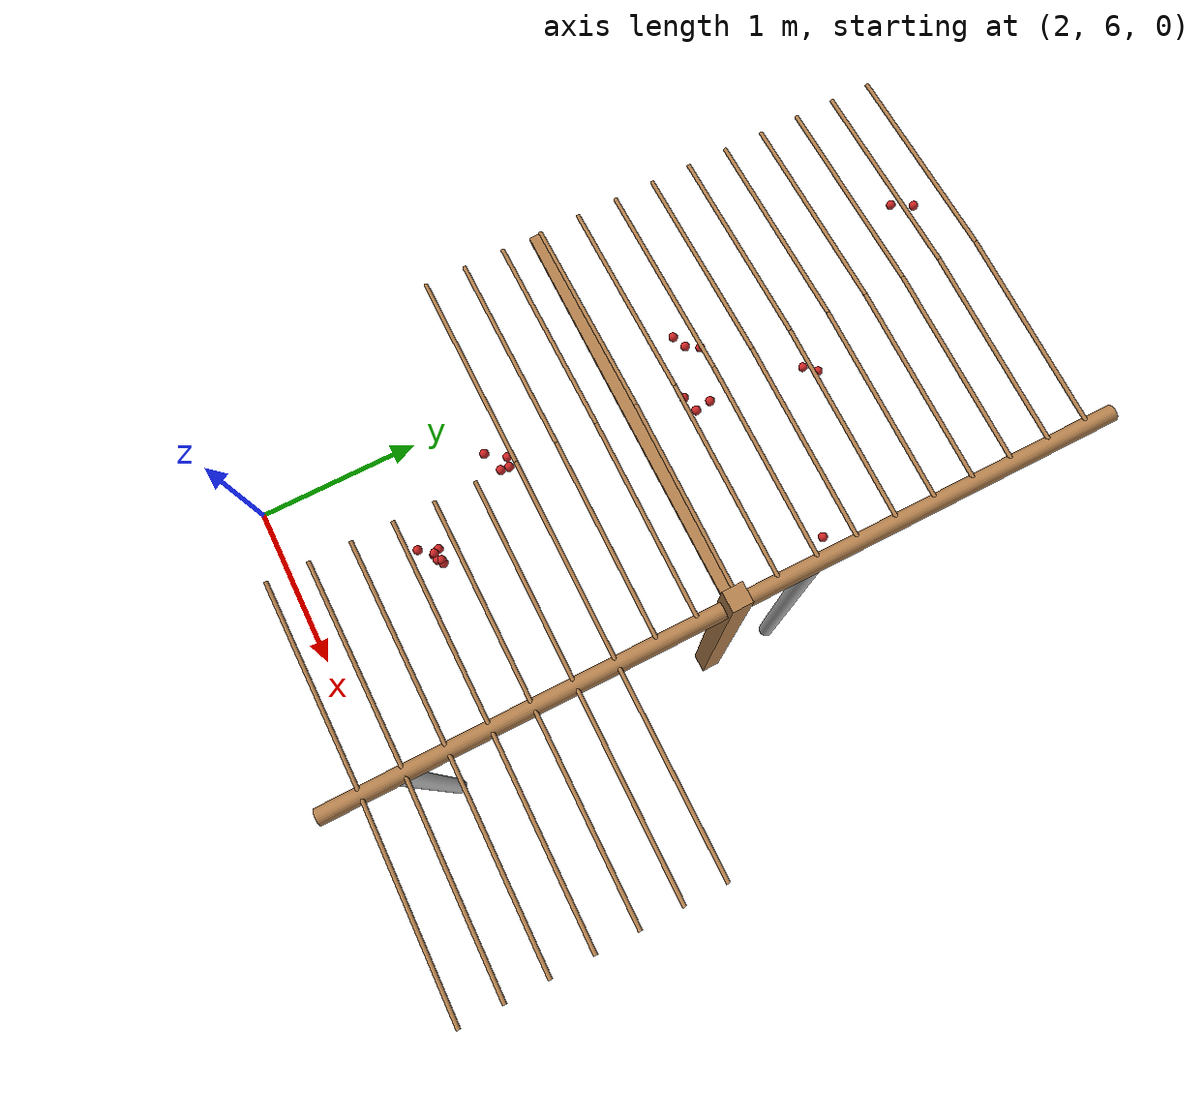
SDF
<sdf version="1.4">
 <model name="pergola">
  <include><name>post_26</name><pose>4.0 8.0 0 0 0 0</pose><uri>model://post</uri></include>
  <link name="beam_15">
   <pose>3.0 8.0 1.81 0 0 0</pose>
   <collision name="collision"><geometry><box><size>2.0 0.06 0.02</size></box></geometry></collision>
   <visual name="visual">
    <geometry><box><size>2.0 0.06 0.02</size></box></geometry>
    <material><script><name>Gazebo/Wood</name></script></material>
   </visual>
   <inertial>
    <mass>5</mass>
    <inertia>
     <ixx>0.0016666666666666668</ixx>
     <ixy>0.0</ixy>
     <ixz>0.0</ixz>
     <iyy>1.6681666666666664</iyy>
     <iyz>0.0</iyz>
     <izz>1.6668333333333332</izz>
    </inertia>
   </inertial>
  </link>
  <include><name>tree_23</name><pose>4.0 6.4 0 0 0 0</pose><uri>model://tree_trunk</uri></include>
  <include><name>tree_24</name><pose>4.0 8.4 0 0 0 0</pose><uri>model://tree_trunk</uri></include>
  <link name="baseBranch_23">
   <pose>4.0 7.0 1.8 1.5707963267948966 0 0</pose>
   <collision name="collision">
    <geometry><cylinder><radius>0.04</radius><length>1.94</length></cylinder></geometry>
   </collision>
   <visual name="visual">
    <geometry><cylinder><radius>0.04</radius><length>1.94</length></cylinder></geometry>
    <material><script><name>Gazebo/WoodFloor</name></script></material>
   </visual>
   <inertial>
    <mass>10</mass>
    <inertia>
     <ixx>3.140333333333333</ixx>
     <ixy>0.0</ixy>
     <ixz>0.0</ixz>
     <iyy>3.140333333333333</iyy>
     <iyz>0.0</iyz>
     <izz>0.008</izz>
    </inertia>
   </inertial>
  </link>
  <link name="baseBranch_24">
   <pose>4.0 9.0 1.8 1.5707963267948966 0 0</pose>
   <collision name="collision">
    <geometry><cylinder><radius>0.04</radius><length>1.94</length></cylinder></geometry>
   </collision>
   <visual name="visual">
    <geometry><cylinder><radius>0.04</radius><length>1.94</length></cylinder></geometry>
    <material><script><name>Gazebo/WoodFloor</name></script></material>
   </visual>
   <inertial>
    <mass>10</mass>
    <inertia>
     <ixx>3.140333333333333</ixx>
     <ixy>0.0</ixy>
     <ixz>0.0</ixz>
     <iyy>3.140333333333333</iyy>
     <iyz>0.0</iyz>
     <izz>0.008</izz>
    </inertia>
   </inertial>
  </link>
  <link name="vine_263">
   <pose>3.5 6.23 1.85 0 -1.5208379310729538 0</pose>
   <collision name="collision">
    <geometry><cylinder><radius>0.01</radius><length>1.0012492197250393</length></cylinder></geometry>
   </collision>
   <visual name="visual">
    <geometry><cylinder><radius>0.01</radius><length>1.0012492197250393</length></cylinder></geometry>
    <material><script><name>Gazebo/WoodFloor</name></script></material>
   </visual>
   <inertial>
    <mass>5</mass>
    <inertia>
     <ixx>0.41783333333333345</ixx>
     <ixy>0.0</ixy>
     <ixz>0.0</ixz>
     <iyy>0.41783333333333345</iyy>
     <iyz>0.0</iyz>
     <izz>0.00025</izz>
    </inertia>
   </inertial>
  </link>
  <link name="vine_265">
   <pose>3.5 6.430000000000001 1.85 0 -1.5208379310729538 0</pose>
   <collision name="collision">
    <geometry><cylinder><radius>0.01</radius><length>1.0012492197250393</length></cylinder></geometry>
   </collision>
   <visual name="visual">
    <geometry><cylinder><radius>0.01</radius><length>1.0012492197250393</length></cylinder></geometry>
    <material><script><name>Gazebo/WoodFloor</name></script></material>
   </visual>
   <inertial>
    <mass>5</mass>
    <inertia>
     <ixx>0.41783333333333345</ixx>
     <ixy>0.0</ixy>
     <ixz>0.0</ixz>
     <iyy>0.41783333333333345</iyy>
     <iyz>0.0</iyz>
     <izz>0.00025</izz>
    </inertia>
   </inertial>
  </link>
  <link name="vine_267">
   <pose>3.5 6.630000000000001 1.85 0 -1.5208379310729538 0</pose>
   <collision name="collision">
    <geometry><cylinder><radius>0.01</radius><length>1.0012492197250393</length></cylinder></geometry>
   </collision>
   <visual name="visual">
    <geometry><cylinder><radius>0.01</radius><length>1.0012492197250393</length></cylinder></geometry>
    <material><script><name>Gazebo/WoodFloor</name></script></material>
   </visual>
   <inertial>
    <mass>5</mass>
    <inertia>
     <ixx>0.41783333333333345</ixx>
     <ixy>0.0</ixy>
     <ixz>0.0</ixz>
     <iyy>0.41783333333333345</iyy>
     <iyz>0.0</iyz>
     <izz>0.00025</izz>
    </inertia>
   </inertial>
  </link>
  <link name="vine_269">
   <pose>3.5 6.830000000000001 1.85 0 -1.5208379310729538 0</pose>
   <collision name="collision">
    <geometry><cylinder><radius>0.01</radius><length>1.0012492197250393</length></cylinder></geometry>
   </collision>
   <visual name="visual">
    <geometry><cylinder><radius>0.01</radius><length>1.0012492197250393</length></cylinder></geometry>
    <material><script><name>Gazebo/WoodFloor</name></script></material>
   </visual>
   <inertial>
    <mass>5</mass>
    <inertia>
     <ixx>0.41783333333333345</ixx>
     <ixy>0.0</ixy>
     <ixz>0.0</ixz>
     <iyy>0.41783333333333345</iyy>
     <iyz>0.0</iyz>
     <izz>0.00025</izz>
    </inertia>
   </inertial>
  </link>
  <link name="vine_271">
   <pose>3.5 7.03 1.85 0 -1.5208379310729538 0</pose>
   <collision name="collision">
    <geometry><cylinder><radius>0.01</radius><length>1.0012492197250393</length></cylinder></geometry>
   </collision>
   <visual name="visual">
    <geometry><cylinder><radius>0.01</radius><length>1.0012492197250393</length></cylinder></geometry>
    <material><script><name>Gazebo/WoodFloor</name></script></material>
   </visual>
   <inertial>
    <mass>5</mass>
    <inertia>
     <ixx>0.41783333333333345</ixx>
     <ixy>0.0</ixy>
     <ixz>0.0</ixz>
     <iyy>0.41783333333333345</iyy>
     <iyz>0.0</iyz>
     <izz>0.00025</izz>
    </inertia>
   </inertial>
  </link>
  <link name="vine_273">
   <pose>3.5 7.23 1.85 0 -1.5208379310729538 0</pose>
   <collision name="collision">
    <geometry><cylinder><radius>0.01</radius><length>1.0012492197250393</length></cylinder></geometry>
   </collision>
   <visual name="visual">
    <geometry><cylinder><radius>0.01</radius><length>1.0012492197250393</length></cylinder></geometry>
    <material><script><name>Gazebo/WoodFloor</name></script></material>
   </visual>
   <inertial>
    <mass>5</mass>
    <inertia>
     <ixx>0.41783333333333345</ixx>
     <ixy>0.0</ixy>
     <ixz>0.0</ixz>
     <iyy>0.41783333333333345</iyy>
     <iyz>0.0</iyz>
     <izz>0.00025</izz>
    </inertia>
   </inertial>
  </link>
  <link name="vine_274">
   <pose>2.5 7.430000000000001 1.85 0 1.5208379310729538 0</pose>
   <collision name="collision">
    <geometry><cylinder><radius>0.01</radius><length>1.0012492197250393</length></cylinder></geometry>
   </collision>
   <visual name="visual">
    <geometry><cylinder><radius>0.01</radius><length>1.0012492197250393</length></cylinder></geometry>
    <material><script><name>Gazebo/WoodFloor</name></script></material>
   </visual>
   <inertial>
    <mass>5</mass>
    <inertia>
     <ixx>0.41783333333333345</ixx>
     <ixy>0.0</ixy>
     <ixz>0.0</ixz>
     <iyy>0.41783333333333345</iyy>
     <iyz>0.0</iyz>
     <izz>0.00025</izz>
    </inertia>
   </inertial>
  </link>
  <link name="vine_275">
   <pose>3.5 7.430000000000001 1.85 0 -1.5208379310729538 0</pose>
   <collision name="collision">
    <geometry><cylinder><radius>0.01</radius><length>1.0012492197250393</length></cylinder></geometry>
   </collision>
   <visual name="visual">
    <geometry><cylinder><radius>0.01</radius><length>1.0012492197250393</length></cylinder></geometry>
    <material><script><name>Gazebo/WoodFloor</name></script></material>
   </visual>
   <inertial>
    <mass>5</mass>
    <inertia>
     <ixx>0.41783333333333345</ixx>
     <ixy>0.0</ixy>
     <ixz>0.0</ixz>
     <iyy>0.41783333333333345</iyy>
     <iyz>0.0</iyz>
     <izz>0.00025</izz>
    </inertia>
   </inertial>
  </link>
  <link name="vine_276">
   <pose>2.5 7.630000000000001 1.85 0 1.5208379310729538 0</pose>
   <collision name="collision">
    <geometry><cylinder><radius>0.01</radius><length>1.0012492197250393</length></cylinder></geometry>
   </collision>
   <visual name="visual">
    <geometry><cylinder><radius>0.01</radius><length>1.0012492197250393</length></cylinder></geometry>
    <material><script><name>Gazebo/WoodFloor</name></script></material>
   </visual>
   <inertial>
    <mass>5</mass>
    <inertia>
     <ixx>0.41783333333333345</ixx>
     <ixy>0.0</ixy>
     <ixz>0.0</ixz>
     <iyy>0.41783333333333345</iyy>
     <iyz>0.0</iyz>
     <izz>0.00025</izz>
    </inertia>
   </inertial>
  </link>
  <link name="vine_277">
   <pose>3.5 7.630000000000001 1.85 0 -1.5208379310729538 0</pose>
   <collision name="collision">
    <geometry><cylinder><radius>0.01</radius><length>1.0012492197250393</length></cylinder></geometry>
   </collision>
   <visual name="visual">
    <geometry><cylinder><radius>0.01</radius><length>1.0012492197250393</length></cylinder></geometry>
    <material><script><name>Gazebo/WoodFloor</name></script></material>
   </visual>
   <inertial>
    <mass>5</mass>
    <inertia>
     <ixx>0.41783333333333345</ixx>
     <ixy>0.0</ixy>
     <ixz>0.0</ixz>
     <iyy>0.41783333333333345</iyy>
     <iyz>0.0</iyz>
     <izz>0.00025</izz>
    </inertia>
   </inertial>
  </link>
  <link name="vine_278">
   <pose>2.5 7.830000000000001 1.85 0 1.5208379310729538 0</pose>
   <collision name="collision">
    <geometry><cylinder><radius>0.01</radius><length>1.0012492197250393</length></cylinder></geometry>
   </collision>
   <visual name="visual">
    <geometry><cylinder><radius>0.01</radius><length>1.0012492197250393</length></cylinder></geometry>
    <material><script><name>Gazebo/WoodFloor</name></script></material>
   </visual>
   <inertial>
    <mass>5</mass>
    <inertia>
     <ixx>0.41783333333333345</ixx>
     <ixy>0.0</ixy>
     <ixz>0.0</ixz>
     <iyy>0.41783333333333345</iyy>
     <iyz>0.0</iyz>
     <izz>0.00025</izz>
    </inertia>
   </inertial>
  </link>
  <link name="vine_279">
   <pose>3.5 7.830000000000001 1.85 0 -1.5208379310729538 0</pose>
   <collision name="collision">
    <geometry><cylinder><radius>0.01</radius><length>1.0012492197250393</length></cylinder></geometry>
   </collision>
   <visual name="visual">
    <geometry><cylinder><radius>0.01</radius><length>1.0012492197250393</length></cylinder></geometry>
    <material><script><name>Gazebo/WoodFloor</name></script></material>
   </visual>
   <inertial>
    <mass>5</mass>
    <inertia>
     <ixx>0.41783333333333345</ixx>
     <ixy>0.0</ixy>
     <ixz>0.0</ixz>
     <iyy>0.41783333333333345</iyy>
     <iyz>0.0</iyz>
     <izz>0.00025</izz>
    </inertia>
   </inertial>
  </link>
  <link name="vine_280">
   <pose>2.5 8.03 1.85 0 1.5208379310729538 0</pose>
   <collision name="collision">
    <geometry><cylinder><radius>0.01</radius><length>1.0012492197250393</length></cylinder></geometry>
   </collision>
   <visual name="visual">
    <geometry><cylinder><radius>0.01</radius><length>1.0012492197250393</length></cylinder></geometry>
    <material><script><name>Gazebo/WoodFloor</name></script></material>
   </visual>
   <inertial>
    <mass>5</mass>
    <inertia>
     <ixx>0.41783333333333345</ixx>
     <ixy>0.0</ixy>
     <ixz>0.0</ixz>
     <iyy>0.41783333333333345</iyy>
     <iyz>0.0</iyz>
     <izz>0.00025</izz>
    </inertia>
   </inertial>
  </link>
  <link name="vine_281">
   <pose>3.5 8.03 1.85 0 -1.5208379310729538 0</pose>
   <collision name="collision">
    <geometry><cylinder><radius>0.01</radius><length>1.0012492197250393</length></cylinder></geometry>
   </collision>
   <visual name="visual">
    <geometry><cylinder><radius>0.01</radius><length>1.0012492197250393</length></cylinder></geometry>
    <material><script><name>Gazebo/WoodFloor</name></script></material>
   </visual>
   <inertial>
    <mass>5</mass>
    <inertia>
     <ixx>0.41783333333333345</ixx>
     <ixy>0.0</ixy>
     <ixz>0.0</ixz>
     <iyy>0.41783333333333345</iyy>
     <iyz>0.0</iyz>
     <izz>0.00025</izz>
    </inertia>
   </inertial>
  </link>
  <link name="vine_282">
   <pose>2.5 8.23 1.85 0 1.5208379310729538 0</pose>
   <collision name="collision">
    <geometry><cylinder><radius>0.01</radius><length>1.0012492197250393</length></cylinder></geometry>
   </collision>
   <visual name="visual">
    <geometry><cylinder><radius>0.01</radius><length>1.0012492197250393</length></cylinder></geometry>
    <material><script><name>Gazebo/WoodFloor</name></script></material>
   </visual>
   <inertial>
    <mass>5</mass>
    <inertia>
     <ixx>0.41783333333333345</ixx>
     <ixy>0.0</ixy>
     <ixz>0.0</ixz>
     <iyy>0.41783333333333345</iyy>
     <iyz>0.0</iyz>
     <izz>0.00025</izz>
    </inertia>
   </inertial>
  </link>
  <link name="vine_283">
   <pose>3.5 8.23 1.85 0 -1.5208379310729538 0</pose>
   <collision name="collision">
    <geometry><cylinder><radius>0.01</radius><length>1.0012492197250393</length></cylinder></geometry>
   </collision>
   <visual name="visual">
    <geometry><cylinder><radius>0.01</radius><length>1.0012492197250393</length></cylinder></geometry>
    <material><script><name>Gazebo/WoodFloor</name></script></material>
   </visual>
   <inertial>
    <mass>5</mass>
    <inertia>
     <ixx>0.41783333333333345</ixx>
     <ixy>0.0</ixy>
     <ixz>0.0</ixz>
     <iyy>0.41783333333333345</iyy>
     <iyz>0.0</iyz>
     <izz>0.00025</izz>
    </inertia>
   </inertial>
  </link>
  <link name="vine_284">
   <pose>2.5 8.43 1.85 0 1.5208379310729538 0</pose>
   <collision name="collision">
    <geometry><cylinder><radius>0.01</radius><length>1.0012492197250393</length></cylinder></geometry>
   </collision>
   <visual name="visual">
    <geometry><cylinder><radius>0.01</radius><length>1.0012492197250393</length></cylinder></geometry>
    <material><script><name>Gazebo/WoodFloor</name></script></material>
   </visual>
   <inertial>
    <mass>5</mass>
    <inertia>
     <ixx>0.41783333333333345</ixx>
     <ixy>0.0</ixy>
     <ixz>0.0</ixz>
     <iyy>0.41783333333333345</iyy>
     <iyz>0.0</iyz>
     <izz>0.00025</izz>
    </inertia>
   </inertial>
  </link>
  <link name="vine_285">
   <pose>3.5 8.43 1.85 0 -1.5208379310729538 0</pose>
   <collision name="collision">
    <geometry><cylinder><radius>0.01</radius><length>1.0012492197250393</length></cylinder></geometry>
   </collision>
   <visual name="visual">
    <geometry><cylinder><radius>0.01</radius><length>1.0012492197250393</length></cylinder></geometry>
    <material><script><name>Gazebo/WoodFloor</name></script></material>
   </visual>
   <inertial>
    <mass>5</mass>
    <inertia>
     <ixx>0.41783333333333345</ixx>
     <ixy>0.0</ixy>
     <ixz>0.0</ixz>
     <iyy>0.41783333333333345</iyy>
     <iyz>0.0</iyz>
     <izz>0.00025</izz>
    </inertia>
   </inertial>
  </link>
  <link name="vine_286">
   <pose>2.5 8.629999999999999 1.85 0 1.5208379310729538 0</pose>
   <collision name="collision">
    <geometry><cylinder><radius>0.01</radius><length>1.0012492197250393</length></cylinder></geometry>
   </collision>
   <visual name="visual">
    <geometry><cylinder><radius>0.01</radius><length>1.0012492197250393</length></cylinder></geometry>
    <material><script><name>Gazebo/WoodFloor</name></script></material>
   </visual>
   <inertial>
    <mass>5</mass>
    <inertia>
     <ixx>0.41783333333333345</ixx>
     <ixy>0.0</ixy>
     <ixz>0.0</ixz>
     <iyy>0.41783333333333345</iyy>
     <iyz>0.0</iyz>
     <izz>0.00025</izz>
    </inertia>
   </inertial>
  </link>
  <link name="vine_287">
   <pose>3.5 8.629999999999999 1.85 0 -1.5208379310729538 0</pose>
   <collision name="collision">
    <geometry><cylinder><radius>0.01</radius><length>1.0012492197250393</length></cylinder></geometry>
   </collision>
   <visual name="visual">
    <geometry><cylinder><radius>0.01</radius><length>1.0012492197250393</length></cylinder></geometry>
    <material><script><name>Gazebo/WoodFloor</name></script></material>
   </visual>
   <inertial>
    <mass>5</mass>
    <inertia>
     <ixx>0.41783333333333345</ixx>
     <ixy>0.0</ixy>
     <ixz>0.0</ixz>
     <iyy>0.41783333333333345</iyy>
     <iyz>0.0</iyz>
     <izz>0.00025</izz>
    </inertia>
   </inertial>
  </link>
  <link name="vine_288">
   <pose>2.5 8.83 1.85 0 1.5208379310729538 0</pose>
   <collision name="collision">
    <geometry><cylinder><radius>0.01</radius><length>1.0012492197250393</length></cylinder></geometry>
   </collision>
   <visual name="visual">
    <geometry><cylinder><radius>0.01</radius><length>1.0012492197250393</length></cylinder></geometry>
    <material><script><name>Gazebo/WoodFloor</name></script></material>
   </visual>
   <inertial>
    <mass>5</mass>
    <inertia>
     <ixx>0.41783333333333345</ixx>
     <ixy>0.0</ixy>
     <ixz>0.0</ixz>
     <iyy>0.41783333333333345</iyy>
     <iyz>0.0</iyz>
     <izz>0.00025</izz>
    </inertia>
   </inertial>
  </link>
  <link name="vine_289">
   <pose>3.5 8.83 1.85 0 -1.5208379310729538 0</pose>
   <collision name="collision">
    <geometry><cylinder><radius>0.01</radius><length>1.0012492197250393</length></cylinder></geometry>
   </collision>
   <visual name="visual">
    <geometry><cylinder><radius>0.01</radius><length>1.0012492197250393</length></cylinder></geometry>
    <material><script><name>Gazebo/WoodFloor</name></script></material>
   </visual>
   <inertial>
    <mass>5</mass>
    <inertia>
     <ixx>0.41783333333333345</ixx>
     <ixy>0.0</ixy>
     <ixz>0.0</ixz>
     <iyy>0.41783333333333345</iyy>
     <iyz>0.0</iyz>
     <izz>0.00025</izz>
    </inertia>
   </inertial>
  </link>
  <link name="vine_290">
   <pose>2.5 9.03 1.85 0 1.5208379310729538 0</pose>
   <collision name="collision">
    <geometry><cylinder><radius>0.01</radius><length>1.0012492197250393</length></cylinder></geometry>
   </collision>
   <visual name="visual">
    <geometry><cylinder><radius>0.01</radius><length>1.0012492197250393</length></cylinder></geometry>
    <material><script><name>Gazebo/WoodFloor</name></script></material>
   </visual>
   <inertial>
    <mass>5</mass>
    <inertia>
     <ixx>0.41783333333333345</ixx>
     <ixy>0.0</ixy>
     <ixz>0.0</ixz>
     <iyy>0.41783333333333345</iyy>
     <iyz>0.0</iyz>
     <izz>0.00025</izz>
    </inertia>
   </inertial>
  </link>
  <link name="vine_291">
   <pose>3.5 9.03 1.85 0 -1.5208379310729538 0</pose>
   <collision name="collision">
    <geometry><cylinder><radius>0.01</radius><length>1.0012492197250393</length></cylinder></geometry>
   </collision>
   <visual name="visual">
    <geometry><cylinder><radius>0.01</radius><length>1.0012492197250393</length></cylinder></geometry>
    <material><script><name>Gazebo/WoodFloor</name></script></material>
   </visual>
   <inertial>
    <mass>5</mass>
    <inertia>
     <ixx>0.41783333333333345</ixx>
     <ixy>0.0</ixy>
     <ixz>0.0</ixz>
     <iyy>0.41783333333333345</iyy>
     <iyz>0.0</iyz>
     <izz>0.00025</izz>
    </inertia>
   </inertial>
  </link>
  <link name="vine_292">
   <pose>2.5 9.23 1.85 0 1.5208379310729538 0</pose>
   <collision name="collision">
    <geometry><cylinder><radius>0.01</radius><length>1.0012492197250393</length></cylinder></geometry>
   </collision>
   <visual name="visual">
    <geometry><cylinder><radius>0.01</radius><length>1.0012492197250393</length></cylinder></geometry>
    <material><script><name>Gazebo/WoodFloor</name></script></material>
   </visual>
   <inertial>
    <mass>5</mass>
    <inertia>
     <ixx>0.41783333333333345</ixx>
     <ixy>0.0</ixy>
     <ixz>0.0</ixz>
     <iyy>0.41783333333333345</iyy>
     <iyz>0.0</iyz>
     <izz>0.00025</izz>
    </inertia>
   </inertial>
  </link>
  <link name="vine_293">
   <pose>3.5 9.23 1.85 0 -1.5208379310729538 0</pose>
   <collision name="collision">
    <geometry><cylinder><radius>0.01</radius><length>1.0012492197250393</length></cylinder></geometry>
   </collision>
   <visual name="visual">
    <geometry><cylinder><radius>0.01</radius><length>1.0012492197250393</length></cylinder></geometry>
    <material><script><name>Gazebo/WoodFloor</name></script></material>
   </visual>
   <inertial>
    <mass>5</mass>
    <inertia>
     <ixx>0.41783333333333345</ixx>
     <ixy>0.0</ixy>
     <ixz>0.0</ixz>
     <iyy>0.41783333333333345</iyy>
     <iyz>0.0</iyz>
     <izz>0.00025</izz>
    </inertia>
   </inertial>
  </link>
  <link name="vine_294">
   <pose>2.5 9.43 1.85 0 1.5208379310729538 0</pose>
   <collision name="collision">
    <geometry><cylinder><radius>0.01</radius><length>1.0012492197250393</length></cylinder></geometry>
   </collision>
   <visual name="visual">
    <geometry><cylinder><radius>0.01</radius><length>1.0012492197250393</length></cylinder></geometry>
    <material><script><name>Gazebo/WoodFloor</name></script></material>
   </visual>
   <inertial>
    <mass>5</mass>
    <inertia>
     <ixx>0.41783333333333345</ixx>
     <ixy>0.0</ixy>
     <ixz>0.0</ixz>
     <iyy>0.41783333333333345</iyy>
     <iyz>0.0</iyz>
     <izz>0.00025</izz>
    </inertia>
   </inertial>
  </link>
  <link name="vine_295">
   <pose>3.5 9.43 1.85 0 -1.5208379310729538 0</pose>
   <collision name="collision">
    <geometry><cylinder><radius>0.01</radius><length>1.0012492197250393</length></cylinder></geometry>
   </collision>
   <visual name="visual">
    <geometry><cylinder><radius>0.01</radius><length>1.0012492197250393</length></cylinder></geometry>
    <material><script><name>Gazebo/WoodFloor</name></script></material>
   </visual>
   <inertial>
    <mass>5</mass>
    <inertia>
     <ixx>0.41783333333333345</ixx>
     <ixy>0.0</ixy>
     <ixz>0.0</ixz>
     <iyy>0.41783333333333345</iyy>
     <iyz>0.0</iyz>
     <izz>0.00025</izz>
    </inertia>
   </inertial>
  </link>
  <link name="vine_296">
   <pose>2.5 9.63 1.85 0 1.5208379310729538 0</pose>
   <collision name="collision">
    <geometry><cylinder><radius>0.01</radius><length>1.0012492197250393</length></cylinder></geometry>
   </collision>
   <visual name="visual">
    <geometry><cylinder><radius>0.01</radius><length>1.0012492197250393</length></cylinder></geometry>
    <material><script><name>Gazebo/WoodFloor</name></script></material>
   </visual>
   <inertial>
    <mass>5</mass>
    <inertia>
     <ixx>0.41783333333333345</ixx>
     <ixy>0.0</ixy>
     <ixz>0.0</ixz>
     <iyy>0.41783333333333345</iyy>
     <iyz>0.0</iyz>
     <izz>0.00025</izz>
    </inertia>
   </inertial>
  </link>
  <link name="vine_297">
   <pose>3.5 9.63 1.85 0 -1.5208379310729538 0</pose>
   <collision name="collision">
    <geometry><cylinder><radius>0.01</radius><length>1.0012492197250393</length></cylinder></geometry>
   </collision>
   <visual name="visual">
    <geometry><cylinder><radius>0.01</radius><length>1.0012492197250393</length></cylinder></geometry>
    <material><script><name>Gazebo/WoodFloor</name></script></material>
   </visual>
   <inertial>
    <mass>5</mass>
    <inertia>
     <ixx>0.41783333333333345</ixx>
     <ixy>0.0</ixy>
     <ixz>0.0</ixz>
     <iyy>0.41783333333333345</iyy>
     <iyz>0.0</iyz>
     <izz>0.00025</izz>
    </inertia>
   </inertial>
  </link>
  <link name="vine_298">
   <pose>2.5 9.83 1.85 0 1.5208379310729538 0</pose>
   <collision name="collision">
    <geometry><cylinder><radius>0.01</radius><length>1.0012492197250393</length></cylinder></geometry>
   </collision>
   <visual name="visual">
    <geometry><cylinder><radius>0.01</radius><length>1.0012492197250393</length></cylinder></geometry>
    <material><script><name>Gazebo/WoodFloor</name></script></material>
   </visual>
   <inertial>
    <mass>5</mass>
    <inertia>
     <ixx>0.41783333333333345</ixx>
     <ixy>0.0</ixy>
     <ixz>0.0</ixz>
     <iyy>0.41783333333333345</iyy>
     <iyz>0.0</iyz>
     <izz>0.00025</izz>
    </inertia>
   </inertial>
  </link>
  <link name="vine_299">
   <pose>3.5 9.83 1.85 0 -1.5208379310729538 0</pose>
   <collision name="collision">
    <geometry><cylinder><radius>0.01</radius><length>1.0012492197250393</length></cylinder></geometry>
   </collision>
   <visual name="visual">
    <geometry><cylinder><radius>0.01</radius><length>1.0012492197250393</length></cylinder></geometry>
    <material><script><name>Gazebo/WoodFloor</name></script></material>
   </visual>
   <inertial>
    <mass>5</mass>
    <inertia>
     <ixx>0.41783333333333345</ixx>
     <ixy>0.0</ixy>
     <ixz>0.0</ixz>
     <iyy>0.41783333333333345</iyy>
     <iyz>0.0</iyz>
     <izz>0.00025</izz>
    </inertia>
   </inertial>
  </link>
  <link name="vine_462">
   <pose>4.5 6.23 1.85 0 1.5208379310729538 0</pose>
   <collision name="collision">
    <geometry><cylinder><radius>0.01</radius><length>1.0012492197250393</length></cylinder></geometry>
   </collision>
   <visual name="visual">
    <geometry><cylinder><radius>0.01</radius><length>1.0012492197250393</length></cylinder></geometry>
    <material><script><name>Gazebo/WoodFloor</name></script></material>
   </visual>
   <inertial>
    <mass>5</mass>
    <inertia>
     <ixx>0.41783333333333345</ixx>
     <ixy>0.0</ixy>
     <ixz>0.0</ixz>
     <iyy>0.41783333333333345</iyy>
     <iyz>0.0</iyz>
     <izz>0.00025</izz>
    </inertia>
   </inertial>
  </link>
  <link name="vine_464">
   <pose>4.5 6.430000000000001 1.85 0 1.5208379310729538 0</pose>
   <collision name="collision">
    <geometry><cylinder><radius>0.01</radius><length>1.0012492197250393</length></cylinder></geometry>
   </collision>
   <visual name="visual">
    <geometry><cylinder><radius>0.01</radius><length>1.0012492197250393</length></cylinder></geometry>
    <material><script><name>Gazebo/WoodFloor</name></script></material>
   </visual>
   <inertial>
    <mass>5</mass>
    <inertia>
     <ixx>0.41783333333333345</ixx>
     <ixy>0.0</ixy>
     <ixz>0.0</ixz>
     <iyy>0.41783333333333345</iyy>
     <iyz>0.0</iyz>
     <izz>0.00025</izz>
    </inertia>
   </inertial>
  </link>
  <link name="vine_466">
   <pose>4.5 6.630000000000001 1.85 0 1.5208379310729538 0</pose>
   <collision name="collision">
    <geometry><cylinder><radius>0.01</radius><length>1.0012492197250393</length></cylinder></geometry>
   </collision>
   <visual name="visual">
    <geometry><cylinder><radius>0.01</radius><length>1.0012492197250393</length></cylinder></geometry>
    <material><script><name>Gazebo/WoodFloor</name></script></material>
   </visual>
   <inertial>
    <mass>5</mass>
    <inertia>
     <ixx>0.41783333333333345</ixx>
     <ixy>0.0</ixy>
     <ixz>0.0</ixz>
     <iyy>0.41783333333333345</iyy>
     <iyz>0.0</iyz>
     <izz>0.00025</izz>
    </inertia>
   </inertial>
  </link>
  <link name="vine_468">
   <pose>4.5 6.830000000000001 1.85 0 1.5208379310729538 0</pose>
   <collision name="collision">
    <geometry><cylinder><radius>0.01</radius><length>1.0012492197250393</length></cylinder></geometry>
   </collision>
   <visual name="visual">
    <geometry><cylinder><radius>0.01</radius><length>1.0012492197250393</length></cylinder></geometry>
    <material><script><name>Gazebo/WoodFloor</name></script></material>
   </visual>
   <inertial>
    <mass>5</mass>
    <inertia>
     <ixx>0.41783333333333345</ixx>
     <ixy>0.0</ixy>
     <ixz>0.0</ixz>
     <iyy>0.41783333333333345</iyy>
     <iyz>0.0</iyz>
     <izz>0.00025</izz>
    </inertia>
   </inertial>
  </link>
  <link name="vine_470">
   <pose>4.5 7.03 1.85 0 1.5208379310729538 0</pose>
   <collision name="collision">
    <geometry><cylinder><radius>0.01</radius><length>1.0012492197250393</length></cylinder></geometry>
   </collision>
   <visual name="visual">
    <geometry><cylinder><radius>0.01</radius><length>1.0012492197250393</length></cylinder></geometry>
    <material><script><name>Gazebo/WoodFloor</name></script></material>
   </visual>
   <inertial>
    <mass>5</mass>
    <inertia>
     <ixx>0.41783333333333345</ixx>
     <ixy>0.0</ixy>
     <ixz>0.0</ixz>
     <iyy>0.41783333333333345</iyy>
     <iyz>0.0</iyz>
     <izz>0.00025</izz>
    </inertia>
   </inertial>
  </link>
  <link name="vine_472">
   <pose>4.5 7.23 1.85 0 1.5208379310729538 0</pose>
   <collision name="collision">
    <geometry><cylinder><radius>0.01</radius><length>1.0012492197250393</length></cylinder></geometry>
   </collision>
   <visual name="visual">
    <geometry><cylinder><radius>0.01</radius><length>1.0012492197250393</length></cylinder></geometry>
    <material><script><name>Gazebo/WoodFloor</name></script></material>
   </visual>
   <inertial>
    <mass>5</mass>
    <inertia>
     <ixx>0.41783333333333345</ixx>
     <ixy>0.0</ixy>
     <ixz>0.0</ixz>
     <iyy>0.41783333333333345</iyy>
     <iyz>0.0</iyz>
     <izz>0.00025</izz>
    </inertia>
   </inertial>
  </link>
  <link name="vine_474">
   <pose>4.5 7.430000000000001 1.85 0 1.5208379310729538 0</pose>
   <collision name="collision">
    <geometry><cylinder><radius>0.01</radius><length>1.0012492197250393</length></cylinder></geometry>
   </collision>
   <visual name="visual">
    <geometry><cylinder><radius>0.01</radius><length>1.0012492197250393</length></cylinder></geometry>
    <material><script><name>Gazebo/WoodFloor</name></script></material>
   </visual>
   <inertial>
    <mass>5</mass>
    <inertia>
     <ixx>0.41783333333333345</ixx>
     <ixy>0.0</ixy>
     <ixz>0.0</ixz>
     <iyy>0.41783333333333345</iyy>
     <iyz>0.0</iyz>
     <izz>0.00025</izz>
    </inertia>
   </inertial>
  </link>
  <link name="fruit_48">
   <pose>3.062347498945036 6.850642194174659 1.5107140224029405 0 0 0</pose>
   <collision name="fruit_collision_48"><geometry><sphere><radius>0.022</radius></sphere></geometry></collision>
   <visual name="visual">
    <geometry><sphere><radius>0.022</radius></sphere></geometry>
    <material><script><name>Gazebo/Red</name></script></material>
   </visual>
   <inertial>
    <mass>0.05</mass>
    <inertia>
     <ixx>9.679999999999999e-06</ixx>
     <ixy>0.0</ixy>
     <ixz>0.0</ixz>
     <iyy>9.679999999999999e-06</iyy>
     <iyz>0.0</iyz>
     <izz>9.679999999999999e-06</izz>
    </inertia>
   </inertial>
   <sensor name="fruit_contact_48" type="contact">
    <contact><collision>fruit_collision_48</collision></contact>
   </sensor>
  </link>
  <link name="fruit_49">
   <pose>3.0347888733879422 8.263886837101282 1.7628582233524133 0 0 0</pose>
   <collision name="fruit_collision_49"><geometry><sphere><radius>0.022</radius></sphere></geometry></collision>
   <visual name="visual">
    <geometry><sphere><radius>0.022</radius></sphere></geometry>
    <material><script><name>Gazebo/Red</name></script></material>
   </visual>
   <inertial>
    <mass>0.05</mass>
    <inertia>
     <ixx>9.679999999999999e-06</ixx>
     <ixy>0.0</ixy>
     <ixz>0.0</ixz>
     <iyy>9.679999999999999e-06</iyy>
     <iyz>0.0</iyz>
     <izz>9.679999999999999e-06</izz>
    </inertia>
   </inertial>
   <sensor name="fruit_contact_49" type="contact">
    <contact><collision>fruit_collision_49</collision></contact>
   </sensor>
  </link>
  <link name="fruit_83">
   <pose>3.0788772071555033 8.914265245275278 1.5128515898486723 0 0 0</pose>
   <collision name="fruit_collision_83"><geometry><sphere><radius>0.022</radius></sphere></geometry></collision>
   <visual name="visual">
    <geometry><sphere><radius>0.022</radius></sphere></geometry>
    <material><script><name>Gazebo/Red</name></script></material>
   </visual>
   <inertial>
    <mass>0.05</mass>
    <inertia>
     <ixx>9.679999999999999e-06</ixx>
     <ixy>0.0</ixy>
     <ixz>0.0</ixz>
     <iyy>9.679999999999999e-06</iyy>
     <iyz>0.0</iyz>
     <izz>9.679999999999999e-06</izz>
    </inertia>
   </inertial>
   <sensor name="fruit_contact_83" type="contact">
    <contact><collision>fruit_collision_83</collision></contact>
   </sensor>
  </link>
  <link name="fruit_150">
   <pose>2.575231706422821 9.664575345939168 1.6877765514558223 0 0 0</pose>
   <collision name="fruit_collision_150"><geometry><sphere><radius>0.022</radius></sphere></geometry></collision>
   <visual name="visual">
    <geometry><sphere><radius>0.022</radius></sphere></geometry>
    <material><script><name>Gazebo/Red</name></script></material>
   </visual>
   <inertial>
    <mass>0.05</mass>
    <inertia>
     <ixx>9.679999999999999e-06</ixx>
     <ixy>0.0</ixy>
     <ixz>0.0</ixz>
     <iyy>9.679999999999999e-06</iyy>
     <iyz>0.0</iyz>
     <izz>9.679999999999999e-06</izz>
    </inertia>
   </inertial>
   <sensor name="fruit_contact_150" type="contact">
    <contact><collision>fruit_collision_150</collision></contact>
   </sensor>
  </link>
  <link name="fruit_157">
   <pose>3.877388877685187 8.562375708038486 1.570059319712277 0 0 0</pose>
   <collision name="fruit_collision_157"><geometry><sphere><radius>0.022</radius></sphere></geometry></collision>
   <visual name="visual">
    <geometry><sphere><radius>0.022</radius></sphere></geometry>
    <material><script><name>Gazebo/Red</name></script></material>
   </visual>
   <inertial>
    <mass>0.05</mass>
    <inertia>
     <ixx>9.679999999999999e-06</ixx>
     <ixy>0.0</ixy>
     <ixz>0.0</ixz>
     <iyy>9.679999999999999e-06</iyy>
     <iyz>0.0</iyz>
     <izz>9.679999999999999e-06</izz>
    </inertia>
   </inertial>
   <sensor name="fruit_contact_157" type="contact">
    <contact><collision>fruit_collision_157</collision></contact>
   </sensor>
  </link>
  <link name="fruit_197">
   <pose>2.8319304945567585 7.325481055427171 1.6774707018642323 0 0 0</pose>
   <collision name="fruit_collision_197"><geometry><sphere><radius>0.022</radius></sphere></geometry></collision>
   <visual name="visual">
    <geometry><sphere><radius>0.022</radius></sphere></geometry>
    <material><script><name>Gazebo/Red</name></script></material>
   </visual>
   <inertial>
    <mass>0.05</mass>
    <inertia>
     <ixx>9.679999999999999e-06</ixx>
     <ixy>0.0</ixy>
     <ixz>0.0</ixz>
     <iyy>9.679999999999999e-06</iyy>
     <iyz>0.0</iyz>
     <izz>9.679999999999999e-06</izz>
    </inertia>
   </inertial>
   <sensor name="fruit_contact_197" type="contact">
    <contact><collision>fruit_collision_197</collision></contact>
   </sensor>
  </link>
  <link name="fruit_230">
   <pose>2.692760497254035 8.391840696756464 1.630340979423978 0 0 0</pose>
   <collision name="fruit_collision_230"><geometry><sphere><radius>0.022</radius></sphere></geometry></collision>
   <visual name="visual">
    <geometry><sphere><radius>0.022</radius></sphere></geometry>
    <material><script><name>Gazebo/Red</name></script></material>
   </visual>
   <inertial>
    <mass>0.05</mass>
    <inertia>
     <ixx>9.679999999999999e-06</ixx>
     <ixy>0.0</ixy>
     <ixz>0.0</ixz>
     <iyy>9.679999999999999e-06</iyy>
     <iyz>0.0</iyz>
     <izz>9.679999999999999e-06</izz>
    </inertia>
   </inertial>
   <sensor name="fruit_contact_230" type="contact">
    <contact><collision>fruit_collision_230</collision></contact>
   </sensor>
  </link>
  <link name="fruit_449">
   <pose>3.108873413919873 6.914448193355587 1.5033300305513668 0 0 0</pose>
   <collision name="fruit_collision_449"><geometry><sphere><radius>0.022</radius></sphere></geometry></collision>
   <visual name="visual">
    <geometry><sphere><radius>0.022</radius></sphere></geometry>
    <material><script><name>Gazebo/Red</name></script></material>
   </visual>
   <inertial>
    <mass>0.05</mass>
    <inertia>
     <ixx>9.679999999999999e-06</ixx>
     <ixy>0.0</ixy>
     <ixz>0.0</ixz>
     <iyy>9.679999999999999e-06</iyy>
     <iyz>0.0</iyz>
     <izz>9.679999999999999e-06</izz>
    </inertia>
   </inertial>
   <sensor name="fruit_contact_449" type="contact">
    <contact><collision>fruit_collision_449</collision></contact>
   </sensor>
  </link>
  <link name="fruit_581">
   <pose>2.9402579867383807 7.402781567155186 1.6726203342502235 0 0 0</pose>
   <collision name="fruit_collision_581"><geometry><sphere><radius>0.022</radius></sphere></geometry></collision>
   <visual name="visual">
    <geometry><sphere><radius>0.022</radius></sphere></geometry>
    <material><script><name>Gazebo/Red</name></script></material>
   </visual>
   <inertial>
    <mass>0.05</mass>
    <inertia>
     <ixx>9.679999999999999e-06</ixx>
     <ixy>0.0</ixy>
     <ixz>0.0</ixz>
     <iyy>9.679999999999999e-06</iyy>
     <iyz>0.0</iyz>
     <izz>9.679999999999999e-06</izz>
    </inertia>
   </inertial>
   <sensor name="fruit_contact_581" type="contact">
    <contact><collision>fruit_collision_581</collision></contact>
   </sensor>
  </link>
  <link name="fruit_631">
   <pose>3.153094868484029 6.931205028353455 1.499860026802695 0 0 0</pose>
   <collision name="fruit_collision_631"><geometry><sphere><radius>0.022</radius></sphere></geometry></collision>
   <visual name="visual">
    <geometry><sphere><radius>0.022</radius></sphere></geometry>
    <material><script><name>Gazebo/Red</name></script></material>
   </visual>
   <inertial>
    <mass>0.05</mass>
    <inertia>
     <ixx>9.679999999999999e-06</ixx>
     <ixy>0.0</ixy>
     <ixz>0.0</ixz>
     <iyy>9.679999999999999e-06</iyy>
     <iyz>0.0</iyz>
     <izz>9.679999999999999e-06</izz>
    </inertia>
   </inertial>
   <sensor name="fruit_contact_631" type="contact">
    <contact><collision>fruit_collision_631</collision></contact>
   </sensor>
  </link>
  <link name="fruit_658">
   <pose>3.981127169265622 8.60002283826253 1.5576579566431545 0 0 0</pose>
   <collision name="fruit_collision_658"><geometry><sphere><radius>0.022</radius></sphere></geometry></collision>
   <visual name="visual">
    <geometry><sphere><radius>0.022</radius></sphere></geometry>
    <material><script><name>Gazebo/Red</name></script></material>
   </visual>
   <inertial>
    <mass>0.05</mass>
    <inertia>
     <ixx>9.679999999999999e-06</ixx>
     <ixy>0.0</ixy>
     <ixz>0.0</ixz>
     <iyy>9.679999999999999e-06</iyy>
     <iyz>0.0</iyz>
     <izz>9.679999999999999e-06</izz>
    </inertia>
   </inertial>
   <sensor name="fruit_contact_658" type="contact">
    <contact><collision>fruit_collision_658</collision></contact>
   </sensor>
  </link>
  <link name="fruit_660">
   <pose>3.1682875792047502 6.932217233692201 1.48953606367221 0 0 0</pose>
   <collision name="fruit_collision_660"><geometry><sphere><radius>0.022</radius></sphere></geometry></collision>
   <visual name="visual">
    <geometry><sphere><radius>0.022</radius></sphere></geometry>
    <material><script><name>Gazebo/Red</name></script></material>
   </visual>
   <inertial>
    <mass>0.05</mass>
    <inertia>
     <ixx>9.679999999999999e-06</ixx>
     <ixy>0.0</ixy>
     <ixz>0.0</ixz>
     <iyy>9.679999999999999e-06</iyy>
     <iyz>0.0</iyz>
     <izz>9.679999999999999e-06</izz>
    </inertia>
   </inertial>
   <sensor name="fruit_contact_660" type="contact">
    <contact><collision>fruit_collision_660</collision></contact>
   </sensor>
  </link>
  <link name="fruit_683">
   <pose>2.9374280756955007 7.361265421010275 1.676882908335148 0 0 0</pose>
   <collision name="fruit_collision_683"><geometry><sphere><radius>0.022</radius></sphere></geometry></collision>
   <visual name="visual">
    <geometry><sphere><radius>0.022</radius></sphere></geometry>
    <material><script><name>Gazebo/Red</name></script></material>
   </visual>
   <inertial>
    <mass>0.05</mass>
    <inertia>
     <ixx>9.679999999999999e-06</ixx>
     <ixy>0.0</ixy>
     <ixz>0.0</ixz>
     <iyy>9.679999999999999e-06</iyy>
     <iyz>0.0</iyz>
     <izz>9.679999999999999e-06</izz>
    </inertia>
   </inertial>
   <sensor name="fruit_contact_683" type="contact">
    <contact><collision>fruit_collision_683</collision></contact>
   </sensor>
  </link>
  <link name="fruit_703">
   <pose>3.125804150483312 8.97449361065895 1.4998455562480744 0 0 0</pose>
   <collision name="fruit_collision_703"><geometry><sphere><radius>0.022</radius></sphere></geometry></collision>
   <visual name="visual">
    <geometry><sphere><radius>0.022</radius></sphere></geometry>
    <material><script><name>Gazebo/Red</name></script></material>
   </visual>
   <inertial>
    <mass>0.05</mass>
    <inertia>
     <ixx>9.679999999999999e-06</ixx>
     <ixy>0.0</ixy>
     <ixz>0.0</ixz>
     <iyy>9.679999999999999e-06</iyy>
     <iyz>0.0</iyz>
     <izz>9.679999999999999e-06</izz>
    </inertia>
   </inertial>
   <sensor name="fruit_contact_703" type="contact">
    <contact><collision>fruit_collision_703</collision></contact>
   </sensor>
  </link>
  <link name="fruit_763">
   <pose>2.8906797040616348 7.415932425445565 1.6645956435787705 0 0 0</pose>
   <collision name="fruit_collision_763"><geometry><sphere><radius>0.022</radius></sphere></geometry></collision>
   <visual name="visual">
    <geometry><sphere><radius>0.022</radius></sphere></geometry>
    <material><script><name>Gazebo/Red</name></script></material>
   </visual>
   <inertial>
    <mass>0.05</mass>
    <inertia>
     <ixx>9.679999999999999e-06</ixx>
     <ixy>0.0</ixy>
     <ixz>0.0</ixz>
     <iyy>9.679999999999999e-06</iyy>
     <iyz>0.0</iyz>
     <izz>9.679999999999999e-06</izz>
    </inertia>
   </inertial>
   <sensor name="fruit_contact_763" type="contact">
    <contact><collision>fruit_collision_763</collision></contact>
   </sensor>
  </link>
  <link name="fruit_773">
   <pose>2.7591274533566543 8.4232762936268 1.6213624880004567 0 0 0</pose>
   <collision name="fruit_collision_773"><geometry><sphere><radius>0.022</radius></sphere></geometry></collision>
   <visual name="visual">
    <geometry><sphere><radius>0.022</radius></sphere></geometry>
    <material><script><name>Gazebo/Red</name></script></material>
   </visual>
   <inertial>
    <mass>0.05</mass>
    <inertia>
     <ixx>9.679999999999999e-06</ixx>
     <ixy>0.0</ixy>
     <ixz>0.0</ixz>
     <iyy>9.679999999999999e-06</iyy>
     <iyz>0.0</iyz>
     <izz>9.679999999999999e-06</izz>
    </inertia>
   </inertial>
   <sensor name="fruit_contact_773" type="contact">
    <contact><collision>fruit_collision_773</collision></contact>
   </sensor>
  </link>
  <link name="fruit_823">
   <pose>3.142973926193445 6.914603976126173 1.4924673858310935 0 0 0</pose>
   <collision name="fruit_collision_823"><geometry><sphere><radius>0.022</radius></sphere></geometry></collision>
   <visual name="visual">
    <geometry><sphere><radius>0.022</radius></sphere></geometry>
    <material><script><name>Gazebo/Red</name></script></material>
   </visual>
   <inertial>
    <mass>0.05</mass>
    <inertia>
     <ixx>9.679999999999999e-06</ixx>
     <ixy>0.0</ixy>
     <ixz>0.0</ixz>
     <iyy>9.679999999999999e-06</iyy>
     <iyz>0.0</iyz>
     <izz>9.679999999999999e-06</izz>
    </inertia>
   </inertial>
   <sensor name="fruit_contact_823" type="contact">
    <contact><collision>fruit_collision_823</collision></contact>
   </sensor>
  </link>
  <link name="fruit_839">
   <pose>2.6252726441163605 9.767836046984732 1.6778042911551123 0 0 0</pose>
   <collision name="fruit_collision_839"><geometry><sphere><radius>0.022</radius></sphere></geometry></collision>
   <visual name="visual">
    <geometry><sphere><radius>0.022</radius></sphere></geometry>
    <material><script><name>Gazebo/Red</name></script></material>
   </visual>
   <inertial>
    <mass>0.05</mass>
    <inertia>
     <ixx>9.679999999999999e-06</ixx>
     <ixy>0.0</ixy>
     <ixz>0.0</ixz>
     <iyy>9.679999999999999e-06</iyy>
     <iyz>0.0</iyz>
     <izz>9.679999999999999e-06</izz>
    </inertia>
   </inertial>
   <sensor name="fruit_contact_839" type="contact">
    <contact><collision>fruit_collision_839</collision></contact>
   </sensor>
  </link>
  <link name="fruit_874">
   <pose>3.097463352610436 6.939860302891065 1.4937804222986593 0 0 0</pose>
   <collision name="fruit_collision_874"><geometry><sphere><radius>0.022</radius></sphere></geometry></collision>
   <visual name="visual">
    <geometry><sphere><radius>0.022</radius></sphere></geometry>
    <material><script><name>Gazebo/Red</name></script></material>
   </visual>
   <inertial>
    <mass>0.05</mass>
    <inertia>
     <ixx>9.679999999999999e-06</ixx>
     <ixy>0.0</ixy>
     <ixz>0.0</ixz>
     <iyy>9.679999999999999e-06</iyy>
     <iyz>0.0</iyz>
     <izz>9.679999999999999e-06</izz>
    </inertia>
   </inertial>
   <sensor name="fruit_contact_874" type="contact">
    <contact><collision>fruit_collision_874</collision></contact>
   </sensor>
  </link>
  <link name="fruit_893">
   <pose>3.0985050409881 8.367965035501564 1.7480055442164752 0 0 0</pose>
   <collision name="fruit_collision_893"><geometry><sphere><radius>0.022</radius></sphere></geometry></collision>
   <visual name="visual">
    <geometry><sphere><radius>0.022</radius></sphere></geometry>
    <material><script><name>Gazebo/Red</name></script></material>
   </visual>
   <inertial>
    <mass>0.05</mass>
    <inertia>
     <ixx>9.679999999999999e-06</ixx>
     <ixy>0.0</ixy>
     <ixz>0.0</ixz>
     <iyy>9.679999999999999e-06</iyy>
     <iyz>0.0</iyz>
     <izz>9.679999999999999e-06</izz>
    </inertia>
   </inertial>
   <sensor name="fruit_contact_893" type="contact">
    <contact><collision>fruit_collision_893</collision></contact>
   </sensor>
  </link>
  <link name="fruit_904">
   <pose>3.109146440590879 8.290151289343664 1.7450982617833444 0 0 0</pose>
   <collision name="fruit_collision_904"><geometry><sphere><radius>0.022</radius></sphere></geometry></collision>
   <visual name="visual">
    <geometry><sphere><radius>0.022</radius></sphere></geometry>
    <material><script><name>Gazebo/Red</name></script></material>
   </visual>
   <inertial>
    <mass>0.05</mass>
    <inertia>
     <ixx>9.679999999999999e-06</ixx>
     <ixy>0.0</ixy>
     <ixz>0.0</ixz>
     <iyy>9.679999999999999e-06</iyy>
     <iyz>0.0</iyz>
     <izz>9.679999999999999e-06</izz>
    </inertia>
   </inertial>
   <sensor name="fruit_contact_904" type="contact">
    <contact><collision>fruit_collision_904</collision></contact>
   </sensor>
  </link>
  <link name="fruit_937">
   <pose>2.7966201608859316 8.484073034297609 1.6237806543471371 0 0 0</pose>
   <collision name="fruit_collision_937"><geometry><sphere><radius>0.022</radius></sphere></geometry></collision>
   <visual name="visual">
    <geometry><sphere><radius>0.022</radius></sphere></geometry>
    <material><script><name>Gazebo/Red</name></script></material>
   </visual>
   <inertial>
    <mass>0.05</mass>
    <inertia>
     <ixx>9.679999999999999e-06</ixx>
     <ixy>0.0</ixy>
     <ixz>0.0</ixz>
     <iyy>9.679999999999999e-06</iyy>
     <iyz>0.0</iyz>
     <izz>9.679999999999999e-06</izz>
    </inertia>
   </inertial>
   <sensor name="fruit_contact_937" type="contact">
    <contact><collision>fruit_collision_937</collision></contact>
   </sensor>
  </link>
  <link name="fruit_991">
   <pose>3.1122109860472644 6.908502945465124 1.4908397451585813 0 0 0</pose>
   <collision name="fruit_collision_991"><geometry><sphere><radius>0.022</radius></sphere></geometry></collision>
   <visual name="visual">
    <geometry><sphere><radius>0.022</radius></sphere></geometry>
    <material><script><name>Gazebo/Red</name></script></material>
   </visual>
   <inertial>
    <mass>0.05</mass>
    <inertia>
     <ixx>9.679999999999999e-06</ixx>
     <ixy>0.0</ixy>
     <ixz>0.0</ixz>
     <iyy>9.679999999999999e-06</iyy>
     <iyz>0.0</iyz>
     <izz>9.679999999999999e-06</izz>
    </inertia>
   </inertial>
   <sensor name="fruit_contact_991" type="contact">
    <contact><collision>fruit_collision_991</collision></contact>
   </sensor>
  </link>
 </model>
</sdf>
